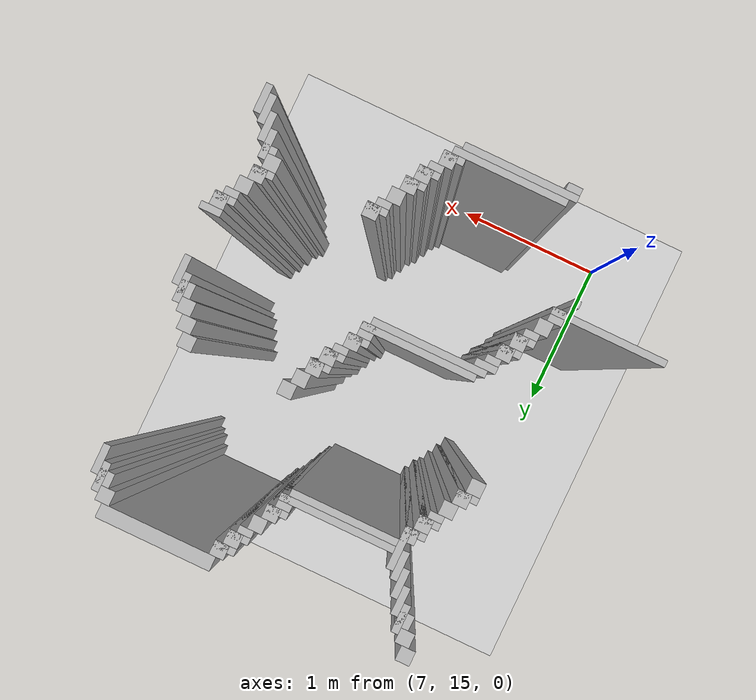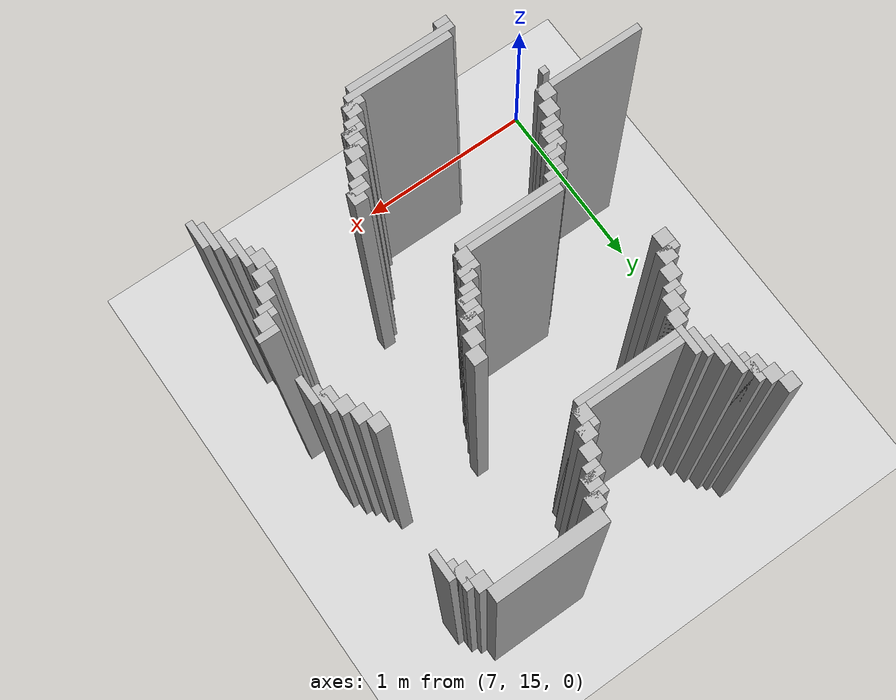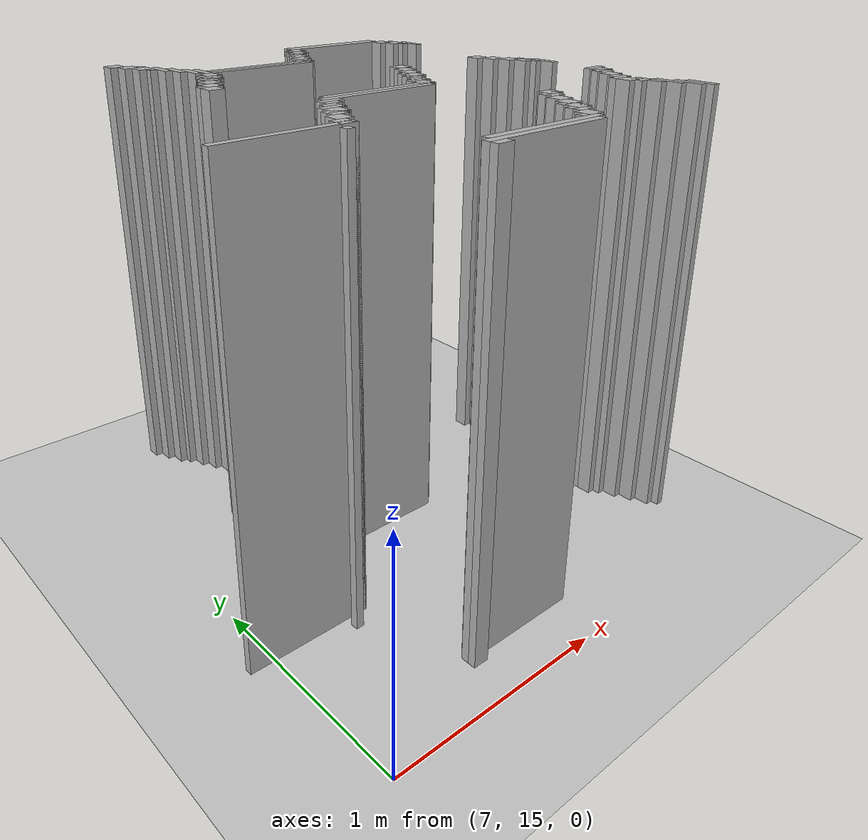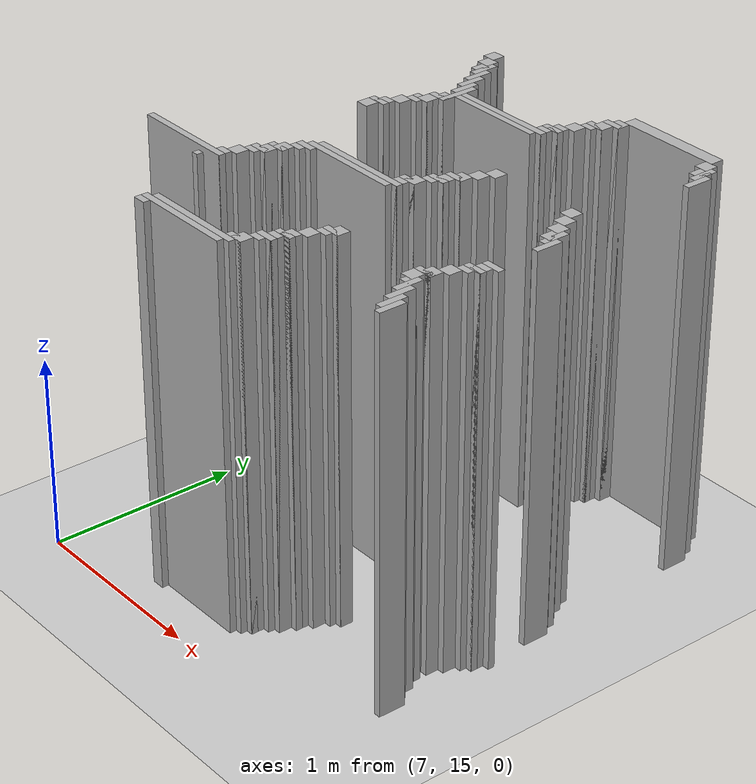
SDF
<sdf version="1.6">
 <world name="slam_world">
  <model name="ground_plane">
   <static>true</static>
   <link name="link">
    <collision name="collision">
     <geometry><plane><normal>0 0 1</normal><size>100 100</size></plane></geometry>
    </collision>
    <visual name="visual">
     <geometry><plane><normal>0 0 1</normal><size>100 100</size></plane></geometry>
     <material>
      <ambient>0.8 0.8 0.8 1</ambient>
      <diffuse>0.8 0.8 0.8 1</diffuse>
      <specular>0.8 0.8 0.8 1</specular>
     </material>
    </visual>
   </link>
  </model>
  <model name="wall_5">
   <static>true</static>
   <pose>7.378190255220417 17.366589327146173 1.0 0 0 0</pose>
   <link name="link">
    <collision name="collision">
     <geometry><box><size>0.06960556844547564 0.06960556844547564 2.0</size></box></geometry>
    </collision>
    <visual name="visual">
     <geometry><box><size>0.06960556844547564 0.06960556844547564 2.0</size></box></geometry>
     <material><ambient>0.5 0.5 0.5 1</ambient><diffuse>0.7 0.7 0.7 1</diffuse></material>
    </visual>
   </link>
  </model>
  <model name="wall_6">
   <static>true</static>
   <pose>8.596287703016241 17.366589327146173 1.0 0 0 0</pose>
   <link name="link">
    <collision name="collision">
     <geometry><box><size>0.5568445475638051 0.06960556844547564 2.0</size></box></geometry>
    </collision>
    <visual name="visual">
     <geometry><box><size>0.5568445475638051 0.06960556844547564 2.0</size></box></geometry>
     <material><ambient>0.5 0.5 0.5 1</ambient><diffuse>0.7 0.7 0.7 1</diffuse></material>
    </visual>
   </link>
  </model>
  <model name="wall_20">
   <static>true</static>
   <pose>7.412993039443156 17.296983758700694 1.0 0 0 0</pose>
   <link name="link">
    <collision name="collision">
     <geometry><box><size>0.06960556844547564 0.06960556844547564 2.0</size></box></geometry>
    </collision>
    <visual name="visual">
     <geometry><box><size>0.06960556844547564 0.06960556844547564 2.0</size></box></geometry>
     <material><ambient>0.5 0.5 0.5 1</ambient><diffuse>0.7 0.7 0.7 1</diffuse></material>
    </visual>
   </link>
  </model>
  <model name="wall_21">
   <static>true</static>
   <pose>8.317865429234338 17.296983758700694 1.0 0 0 0</pose>
   <link name="link">
    <collision name="collision">
     <geometry><box><size>0.06960556844547564 0.06960556844547564 2.0</size></box></geometry>
    </collision>
    <visual name="visual">
     <geometry><box><size>0.06960556844547564 0.06960556844547564 2.0</size></box></geometry>
     <material><ambient>0.5 0.5 0.5 1</ambient><diffuse>0.7 0.7 0.7 1</diffuse></material>
    </visual>
   </link>
  </model>
  <model name="wall_22">
   <static>true</static>
   <pose>8.874709976798144 17.296983758700694 1.0 0 0 0</pose>
   <link name="link">
    <collision name="collision">
     <geometry><box><size>0.06960556844547564 0.06960556844547564 2.0</size></box></geometry>
    </collision>
    <visual name="visual">
     <geometry><box><size>0.06960556844547564 0.06960556844547564 2.0</size></box></geometry>
     <material><ambient>0.5 0.5 0.5 1</ambient><diffuse>0.7 0.7 0.7 1</diffuse></material>
    </visual>
   </link>
  </model>
  <model name="wall_40">
   <static>true</static>
   <pose>7.465197215777262 17.22737819025522 1.0 0 0 0</pose>
   <link name="link">
    <collision name="collision">
     <geometry><box><size>0.03480278422273782 0.13921113689095127 2.0</size></box></geometry>
    </collision>
    <visual name="visual">
     <geometry><box><size>0.03480278422273782 0.13921113689095127 2.0</size></box></geometry>
     <material><ambient>0.5 0.5 0.5 1</ambient><diffuse>0.7 0.7 0.7 1</diffuse></material>
    </visual>
   </link>
  </model>
  <model name="wall_41">
   <static>true</static>
   <pose>8.30046403712297 17.279582366589327 1.0 0 0 0</pose>
   <link name="link">
    <collision name="collision">
     <geometry><box><size>0.10440835266821345 0.03480278422273782 2.0</size></box></geometry>
    </collision>
    <visual name="visual">
     <geometry><box><size>0.10440835266821345 0.03480278422273782 2.0</size></box></geometry>
     <material><ambient>0.5 0.5 0.5 1</ambient><diffuse>0.7 0.7 0.7 1</diffuse></material>
    </visual>
   </link>
  </model>
  <model name="wall_42">
   <static>true</static>
   <pose>8.92691415313225 17.22737819025522 1.0 0 0 0</pose>
   <link name="link">
    <collision name="collision">
     <geometry><box><size>0.03480278422273782 0.13921113689095127 2.0</size></box></geometry>
    </collision>
    <visual name="visual">
     <geometry><box><size>0.03480278422273782 0.13921113689095127 2.0</size></box></geometry>
     <material><ambient>0.5 0.5 0.5 1</ambient><diffuse>0.7 0.7 0.7 1</diffuse></material>
    </visual>
   </link>
  </model>
  <model name="wall_60">
   <static>true</static>
   <pose>7.447795823665893 17.22737819025522 1.0 0 0 0</pose>
   <link name="link">
    <collision name="collision">
     <geometry><box><size>0.06960556844547564 0.06960556844547564 2.0</size></box></geometry>
    </collision>
    <visual name="visual">
     <geometry><box><size>0.06960556844547564 0.06960556844547564 2.0</size></box></geometry>
     <material><ambient>0.5 0.5 0.5 1</ambient><diffuse>0.7 0.7 0.7 1</diffuse></material>
    </visual>
   </link>
  </model>
  <model name="wall_61">
   <static>true</static>
   <pose>8.2830626450116 17.22737819025522 1.0 0 0 0</pose>
   <link name="link">
    <collision name="collision">
     <geometry><box><size>0.06960556844547564 0.06960556844547564 2.0</size></box></geometry>
    </collision>
    <visual name="visual">
     <geometry><box><size>0.06960556844547564 0.06960556844547564 2.0</size></box></geometry>
     <material><ambient>0.5 0.5 0.5 1</ambient><diffuse>0.7 0.7 0.7 1</diffuse></material>
    </visual>
   </link>
  </model>
  <model name="wall_62">
   <static>true</static>
   <pose>8.909512761020881 17.22737819025522 1.0 0 0 0</pose>
   <link name="link">
    <collision name="collision">
     <geometry><box><size>0.06960556844547564 0.06960556844547564 2.0</size></box></geometry>
    </collision>
    <visual name="visual">
     <geometry><box><size>0.06960556844547564 0.06960556844547564 2.0</size></box></geometry>
     <material><ambient>0.5 0.5 0.5 1</ambient><diffuse>0.7 0.7 0.7 1</diffuse></material>
    </visual>
   </link>
  </model>
  <model name="wall_80">
   <static>true</static>
   <pose>7.5 17.157772621809745 1.0 0 0 0</pose>
   <link name="link">
    <collision name="collision">
     <geometry><box><size>0.03480278422273782 0.13921113689095127 2.0</size></box></geometry>
    </collision>
    <visual name="visual">
     <geometry><box><size>0.03480278422273782 0.13921113689095127 2.0</size></box></geometry>
     <material><ambient>0.5 0.5 0.5 1</ambient><diffuse>0.7 0.7 0.7 1</diffuse></material>
    </visual>
   </link>
  </model>
  <model name="wall_81">
   <static>true</static>
   <pose>8.265661252900232 17.209976798143853 1.0 0 0 0</pose>
   <link name="link">
    <collision name="collision">
     <geometry><box><size>0.10440835266821345 0.03480278422273782 2.0</size></box></geometry>
    </collision>
    <visual name="visual">
     <geometry><box><size>0.10440835266821345 0.03480278422273782 2.0</size></box></geometry>
     <material><ambient>0.5 0.5 0.5 1</ambient><diffuse>0.7 0.7 0.7 1</diffuse></material>
    </visual>
   </link>
  </model>
  <model name="wall_82">
   <static>true</static>
   <pose>8.961716937354987 17.157772621809745 1.0 0 0 0</pose>
   <link name="link">
    <collision name="collision">
     <geometry><box><size>0.03480278422273782 0.13921113689095127 2.0</size></box></geometry>
    </collision>
    <visual name="visual">
     <geometry><box><size>0.03480278422273782 0.13921113689095127 2.0</size></box></geometry>
     <material><ambient>0.5 0.5 0.5 1</ambient><diffuse>0.7 0.7 0.7 1</diffuse></material>
    </visual>
   </link>
  </model>
  <model name="wall_96">
   <static>true</static>
   <pose>8.248259860788863 17.17517401392111 1.0 0 0 0</pose>
   <link name="link">
    <collision name="collision">
     <geometry><box><size>0.06960556844547564 0.03480278422273782 2.0</size></box></geometry>
    </collision>
    <visual name="visual">
     <geometry><box><size>0.06960556844547564 0.03480278422273782 2.0</size></box></geometry>
     <material><ambient>0.5 0.5 0.5 1</ambient><diffuse>0.7 0.7 0.7 1</diffuse></material>
    </visual>
   </link>
  </model>
  <model name="wall_110">
   <static>true</static>
   <pose>7.534802784222737 17.08816705336427 1.0 0 0 0</pose>
   <link name="link">
    <collision name="collision">
     <geometry><box><size>0.03480278422273782 0.13921113689095127 2.0</size></box></geometry>
    </collision>
    <visual name="visual">
     <geometry><box><size>0.03480278422273782 0.13921113689095127 2.0</size></box></geometry>
     <material><ambient>0.5 0.5 0.5 1</ambient><diffuse>0.7 0.7 0.7 1</diffuse></material>
    </visual>
   </link>
  </model>
  <model name="wall_111">
   <static>true</static>
   <pose>8.213457076566124 17.122969837587007 1.0 0 0 0</pose>
   <link name="link">
    <collision name="collision">
     <geometry><box><size>0.06960556844547564 0.06960556844547564 2.0</size></box></geometry>
    </collision>
    <visual name="visual">
     <geometry><box><size>0.06960556844547564 0.06960556844547564 2.0</size></box></geometry>
     <material><ambient>0.5 0.5 0.5 1</ambient><diffuse>0.7 0.7 0.7 1</diffuse></material>
    </visual>
   </link>
  </model>
  <model name="wall_130">
   <static>true</static>
   <pose>7.569605568445476 17.01856148491879 1.0 0 0 0</pose>
   <link name="link">
    <collision name="collision">
     <geometry><box><size>0.03480278422273782 0.13921113689095127 2.0</size></box></geometry>
    </collision>
    <visual name="visual">
     <geometry><box><size>0.03480278422273782 0.13921113689095127 2.0</size></box></geometry>
     <material><ambient>0.5 0.5 0.5 1</ambient><diffuse>0.7 0.7 0.7 1</diffuse></material>
    </visual>
   </link>
  </model>
  <model name="wall_131">
   <static>true</static>
   <pose>8.178654292343387 17.053364269141532 1.0 0 0 0</pose>
   <link name="link">
    <collision name="collision">
     <geometry><box><size>0.06960556844547564 0.06960556844547564 2.0</size></box></geometry>
    </collision>
    <visual name="visual">
     <geometry><box><size>0.06960556844547564 0.06960556844547564 2.0</size></box></geometry>
     <material><ambient>0.5 0.5 0.5 1</ambient><diffuse>0.7 0.7 0.7 1</diffuse></material>
    </visual>
   </link>
  </model>
  <model name="wall_150">
   <static>true</static>
   <pose>7.604408352668213 16.948955916473317 1.0 0 0 0</pose>
   <link name="link">
    <collision name="collision">
     <geometry><box><size>0.03480278422273782 0.2088167053364269 2.0</size></box></geometry>
    </collision>
    <visual name="visual">
     <geometry><box><size>0.03480278422273782 0.2088167053364269 2.0</size></box></geometry>
     <material><ambient>0.5 0.5 0.5 1</ambient><diffuse>0.7 0.7 0.7 1</diffuse></material>
    </visual>
   </link>
  </model>
  <model name="wall_151">
   <static>true</static>
   <pose>8.161252900232018 17.035962877030162 1.0 0 0 0</pose>
   <link name="link">
    <collision name="collision">
     <geometry><box><size>0.10440835266821345 0.03480278422273782 2.0</size></box></geometry>
    </collision>
    <visual name="visual">
     <geometry><box><size>0.10440835266821345 0.03480278422273782 2.0</size></box></geometry>
     <material><ambient>0.5 0.5 0.5 1</ambient><diffuse>0.7 0.7 0.7 1</diffuse></material>
    </visual>
   </link>
  </model>
  <model name="wall_166">
   <static>true</static>
   <pose>8.14385150812065 16.983758700696054 1.0 0 0 0</pose>
   <link name="link">
    <collision name="collision">
     <geometry><box><size>0.06960556844547564 0.06960556844547564 2.0</size></box></geometry>
    </collision>
    <visual name="visual">
     <geometry><box><size>0.06960556844547564 0.06960556844547564 2.0</size></box></geometry>
     <material><ambient>0.5 0.5 0.5 1</ambient><diffuse>0.7 0.7 0.7 1</diffuse></material>
    </visual>
   </link>
  </model>
  <model name="wall_176">
   <static>true</static>
   <pose>7.900232018561485 16.966357308584687 1.0 0 0 0</pose>
   <link name="link">
    <collision name="collision">
     <geometry><box><size>0.5568445475638051 0.03480278422273782 2.0</size></box></geometry>
    </collision>
    <visual name="visual">
     <geometry><box><size>0.5568445475638051 0.03480278422273782 2.0</size></box></geometry>
     <material><ambient>0.5 0.5 0.5 1</ambient><diffuse>0.7 0.7 0.7 1</diffuse></material>
    </visual>
   </link>
  </model>
  <model name="wall_187">
   <static>true</static>
   <pose>7.882830626450116 16.93155452436195 1.0 0 0 0</pose>
   <link name="link">
    <collision name="collision">
     <geometry><box><size>0.5220417633410672 0.03480278422273782 2.0</size></box></geometry>
    </collision>
    <visual name="visual">
     <geometry><box><size>0.5220417633410672 0.03480278422273782 2.0</size></box></geometry>
     <material><ambient>0.5 0.5 0.5 1</ambient><diffuse>0.7 0.7 0.7 1</diffuse></material>
    </visual>
   </link>
  </model>
  <model name="wall_195">
   <static>true</static>
   <pose>7.587006960556844 16.87935034802784 1.0 0 0 0</pose>
   <link name="link">
    <collision name="collision">
     <geometry><box><size>0.06960556844547564 0.06960556844547564 2.0</size></box></geometry>
    </collision>
    <visual name="visual">
     <geometry><box><size>0.06960556844547564 0.06960556844547564 2.0</size></box></geometry>
     <material><ambient>0.5 0.5 0.5 1</ambient><diffuse>0.7 0.7 0.7 1</diffuse></material>
    </visual>
   </link>
  </model>
  <model name="wall_203">
   <static>true</static>
   <pose>7.569605568445476 16.86194895591647 1.0 0 0 0</pose>
   <link name="link">
    <collision name="collision">
     <geometry><box><size>0.10440835266821345 0.03480278422273782 2.0</size></box></geometry>
    </collision>
    <visual name="visual">
     <geometry><box><size>0.10440835266821345 0.03480278422273782 2.0</size></box></geometry>
     <material><ambient>0.5 0.5 0.5 1</ambient><diffuse>0.7 0.7 0.7 1</diffuse></material>
    </visual>
   </link>
  </model>
  <model name="wall_211">
   <static>true</static>
   <pose>7.552204176334106 16.809744779582367 1.0 0 0 0</pose>
   <link name="link">
    <collision name="collision">
     <geometry><box><size>0.06960556844547564 0.06960556844547564 2.0</size></box></geometry>
    </collision>
    <visual name="visual">
     <geometry><box><size>0.06960556844547564 0.06960556844547564 2.0</size></box></geometry>
     <material><ambient>0.5 0.5 0.5 1</ambient><diffuse>0.7 0.7 0.7 1</diffuse></material>
    </visual>
   </link>
  </model>
  <model name="wall_219">
   <static>true</static>
   <pose>7.534802784222737 16.792343387470996 1.0 0 0 0</pose>
   <link name="link">
    <collision name="collision">
     <geometry><box><size>0.10440835266821345 0.03480278422273782 2.0</size></box></geometry>
    </collision>
    <visual name="visual">
     <geometry><box><size>0.10440835266821345 0.03480278422273782 2.0</size></box></geometry>
     <material><ambient>0.5 0.5 0.5 1</ambient><diffuse>0.7 0.7 0.7 1</diffuse></material>
    </visual>
   </link>
  </model>
  <model name="wall_225">
   <static>true</static>
   <pose>7.517401392111369 16.75754060324826 1.0 0 0 0</pose>
   <link name="link">
    <collision name="collision">
     <geometry><box><size>0.06960556844547564 0.03480278422273782 2.0</size></box></geometry>
    </collision>
    <visual name="visual">
     <geometry><box><size>0.06960556844547564 0.03480278422273782 2.0</size></box></geometry>
     <material><ambient>0.5 0.5 0.5 1</ambient><diffuse>0.7 0.7 0.7 1</diffuse></material>
    </visual>
   </link>
  </model>
  <model name="wall_231">
   <static>true</static>
   <pose>7.48259860788863 16.70533642691415 1.0 0 0 0</pose>
   <link name="link">
    <collision name="collision">
     <geometry><box><size>0.06960556844547564 0.06960556844547564 2.0</size></box></geometry>
    </collision>
    <visual name="visual">
     <geometry><box><size>0.06960556844547564 0.06960556844547564 2.0</size></box></geometry>
     <material><ambient>0.5 0.5 0.5 1</ambient><diffuse>0.7 0.7 0.7 1</diffuse></material>
    </visual>
   </link>
  </model>
  <model name="wall_239">
   <static>true</static>
   <pose>7.447795823665893 16.635730858468676 1.0 0 0 0</pose>
   <link name="link">
    <collision name="collision">
     <geometry><box><size>0.06960556844547564 0.06960556844547564 2.0</size></box></geometry>
    </collision>
    <visual name="visual">
     <geometry><box><size>0.06960556844547564 0.06960556844547564 2.0</size></box></geometry>
     <material><ambient>0.5 0.5 0.5 1</ambient><diffuse>0.7 0.7 0.7 1</diffuse></material>
    </visual>
   </link>
  </model>
  <model name="wall_247">
   <static>true</static>
   <pose>7.430394431554524 16.61832946635731 1.0 0 0 0</pose>
   <link name="link">
    <collision name="collision">
     <geometry><box><size>0.10440835266821345 0.03480278422273782 2.0</size></box></geometry>
    </collision>
    <visual name="visual">
     <geometry><box><size>0.10440835266821345 0.03480278422273782 2.0</size></box></geometry>
     <material><ambient>0.5 0.5 0.5 1</ambient><diffuse>0.7 0.7 0.7 1</diffuse></material>
    </visual>
   </link>
  </model>
  <model name="wall_253">
   <static>true</static>
   <pose>7.412993039443156 16.5661252900232 1.0 0 0 0</pose>
   <link name="link">
    <collision name="collision">
     <geometry><box><size>0.06960556844547564 0.06960556844547564 2.0</size></box></geometry>
    </collision>
    <visual name="visual">
     <geometry><box><size>0.06960556844547564 0.06960556844547564 2.0</size></box></geometry>
     <material><ambient>0.5 0.5 0.5 1</ambient><diffuse>0.7 0.7 0.7 1</diffuse></material>
    </visual>
   </link>
  </model>
  <model name="wall_264">
   <static>true</static>
   <pose>8.352668213457076 16.531322505800464 1.0 0 0 0</pose>
   <link name="link">
    <collision name="collision">
     <geometry><box><size>0.06960556844547564 0.06960556844547564 2.0</size></box></geometry>
    </collision>
    <visual name="visual">
     <geometry><box><size>0.06960556844547564 0.06960556844547564 2.0</size></box></geometry>
     <material><ambient>0.5 0.5 0.5 1</ambient><diffuse>0.7 0.7 0.7 1</diffuse></material>
    </visual>
   </link>
  </model>
  <model name="wall_265">
   <static>true</static>
   <pose>8.839907192575406 16.531322505800464 1.0 0 0 0</pose>
   <link name="link">
    <collision name="collision">
     <geometry><box><size>0.06960556844547564 0.06960556844547564 2.0</size></box></geometry>
    </collision>
    <visual name="visual">
     <geometry><box><size>0.06960556844547564 0.06960556844547564 2.0</size></box></geometry>
     <material><ambient>0.5 0.5 0.5 1</ambient><diffuse>0.7 0.7 0.7 1</diffuse></material>
    </visual>
   </link>
  </model>
  <model name="wall_285">
   <static>true</static>
   <pose>8.317865429234338 16.46171693735499 1.0 0 0 0</pose>
   <link name="link">
    <collision name="collision">
     <geometry><box><size>0.06960556844547564 0.06960556844547564 2.0</size></box></geometry>
    </collision>
    <visual name="visual">
     <geometry><box><size>0.06960556844547564 0.06960556844547564 2.0</size></box></geometry>
     <material><ambient>0.5 0.5 0.5 1</ambient><diffuse>0.7 0.7 0.7 1</diffuse></material>
    </visual>
   </link>
  </model>
  <model name="wall_286">
   <static>true</static>
   <pose>8.874709976798144 16.46171693735499 1.0 0 0 0</pose>
   <link name="link">
    <collision name="collision">
     <geometry><box><size>0.06960556844547564 0.06960556844547564 2.0</size></box></geometry>
    </collision>
    <visual name="visual">
     <geometry><box><size>0.06960556844547564 0.06960556844547564 2.0</size></box></geometry>
     <material><ambient>0.5 0.5 0.5 1</ambient><diffuse>0.7 0.7 0.7 1</diffuse></material>
    </visual>
   </link>
  </model>
  <model name="wall_308">
   <static>true</static>
   <pose>8.2830626450116 16.39211136890951 1.0 0 0 0</pose>
   <link name="link">
    <collision name="collision">
     <geometry><box><size>0.06960556844547564 0.06960556844547564 2.0</size></box></geometry>
    </collision>
    <visual name="visual">
     <geometry><box><size>0.06960556844547564 0.06960556844547564 2.0</size></box></geometry>
     <material><ambient>0.5 0.5 0.5 1</ambient><diffuse>0.7 0.7 0.7 1</diffuse></material>
    </visual>
   </link>
  </model>
  <model name="wall_309">
   <static>true</static>
   <pose>8.909512761020881 16.39211136890951 1.0 0 0 0</pose>
   <link name="link">
    <collision name="collision">
     <geometry><box><size>0.06960556844547564 0.06960556844547564 2.0</size></box></geometry>
    </collision>
    <visual name="visual">
     <geometry><box><size>0.06960556844547564 0.06960556844547564 2.0</size></box></geometry>
     <material><ambient>0.5 0.5 0.5 1</ambient><diffuse>0.7 0.7 0.7 1</diffuse></material>
    </visual>
   </link>
  </model>
  <model name="wall_325">
   <static>true</static>
   <pose>8.265661252900232 16.374709976798144 1.0 0 0 0</pose>
   <link name="link">
    <collision name="collision">
     <geometry><box><size>0.10440835266821345 0.03480278422273782 2.0</size></box></geometry>
    </collision>
    <visual name="visual">
     <geometry><box><size>0.10440835266821345 0.03480278422273782 2.0</size></box></geometry>
     <material><ambient>0.5 0.5 0.5 1</ambient><diffuse>0.7 0.7 0.7 1</diffuse></material>
    </visual>
   </link>
  </model>
  <model name="wall_326">
   <static>true</static>
   <pose>8.961716937354987 16.322505800464036 1.0 0 0 0</pose>
   <link name="link">
    <collision name="collision">
     <geometry><box><size>0.03480278422273782 0.13921113689095127 2.0</size></box></geometry>
    </collision>
    <visual name="visual">
     <geometry><box><size>0.03480278422273782 0.13921113689095127 2.0</size></box></geometry>
     <material><ambient>0.5 0.5 0.5 1</ambient><diffuse>0.7 0.7 0.7 1</diffuse></material>
    </visual>
   </link>
  </model>
  <model name="wall_342">
   <static>true</static>
   <pose>8.248259860788863 16.322505800464036 1.0 0 0 0</pose>
   <link name="link">
    <collision name="collision">
     <geometry><box><size>0.06960556844547564 0.06960556844547564 2.0</size></box></geometry>
    </collision>
    <visual name="visual">
     <geometry><box><size>0.06960556844547564 0.06960556844547564 2.0</size></box></geometry>
     <material><ambient>0.5 0.5 0.5 1</ambient><diffuse>0.7 0.7 0.7 1</diffuse></material>
    </visual>
   </link>
  </model>
  <model name="wall_343">
   <static>true</static>
   <pose>8.944315545243619 16.322505800464036 1.0 0 0 0</pose>
   <link name="link">
    <collision name="collision">
     <geometry><box><size>0.06960556844547564 0.06960556844547564 2.0</size></box></geometry>
    </collision>
    <visual name="visual">
     <geometry><box><size>0.06960556844547564 0.06960556844547564 2.0</size></box></geometry>
     <material><ambient>0.5 0.5 0.5 1</ambient><diffuse>0.7 0.7 0.7 1</diffuse></material>
    </visual>
   </link>
  </model>
  <model name="wall_359">
   <static>true</static>
   <pose>8.230858468677495 16.30510440835267 1.0 0 0 0</pose>
   <link name="link">
    <collision name="collision">
     <geometry><box><size>0.10440835266821345 0.03480278422273782 2.0</size></box></geometry>
    </collision>
    <visual name="visual">
     <geometry><box><size>0.10440835266821345 0.03480278422273782 2.0</size></box></geometry>
     <material><ambient>0.5 0.5 0.5 1</ambient><diffuse>0.7 0.7 0.7 1</diffuse></material>
    </visual>
   </link>
  </model>
  <model name="wall_360">
   <static>true</static>
   <pose>8.996519721577727 16.25290023201856 1.0 0 0 0</pose>
   <link name="link">
    <collision name="collision">
     <geometry><box><size>0.03480278422273782 0.13921113689095127 2.0</size></box></geometry>
    </collision>
    <visual name="visual">
     <geometry><box><size>0.03480278422273782 0.13921113689095127 2.0</size></box></geometry>
     <material><ambient>0.5 0.5 0.5 1</ambient><diffuse>0.7 0.7 0.7 1</diffuse></material>
    </visual>
   </link>
  </model>
  <model name="wall_371">
   <static>true</static>
   <pose>8.213457076566124 16.270301624129928 1.0 0 0 0</pose>
   <link name="link">
    <collision name="collision">
     <geometry><box><size>0.06960556844547564 0.03480278422273782 2.0</size></box></geometry>
    </collision>
    <visual name="visual">
     <geometry><box><size>0.06960556844547564 0.03480278422273782 2.0</size></box></geometry>
     <material><ambient>0.5 0.5 0.5 1</ambient><diffuse>0.7 0.7 0.7 1</diffuse></material>
    </visual>
   </link>
  </model>
  <model name="wall_384">
   <static>true</static>
   <pose>8.178654292343387 16.218097447795824 1.0 0 0 0</pose>
   <link name="link">
    <collision name="collision">
     <geometry><box><size>0.06960556844547564 0.06960556844547564 2.0</size></box></geometry>
    </collision>
    <visual name="visual">
     <geometry><box><size>0.06960556844547564 0.06960556844547564 2.0</size></box></geometry>
     <material><ambient>0.5 0.5 0.5 1</ambient><diffuse>0.7 0.7 0.7 1</diffuse></material>
    </visual>
   </link>
  </model>
  <model name="wall_396">
   <static>true</static>
   <pose>8.161252900232018 16.200696055684453 1.0 0 0 0</pose>
   <link name="link">
    <collision name="collision">
     <geometry><box><size>0.10440835266821345 0.03480278422273782 2.0</size></box></geometry>
    </collision>
    <visual name="visual">
     <geometry><box><size>0.10440835266821345 0.03480278422273782 2.0</size></box></geometry>
     <material><ambient>0.5 0.5 0.5 1</ambient><diffuse>0.7 0.7 0.7 1</diffuse></material>
    </visual>
   </link>
  </model>
  <model name="wall_409">
   <static>true</static>
   <pose>8.14385150812065 16.14849187935035 1.0 0 0 0</pose>
   <link name="link">
    <collision name="collision">
     <geometry><box><size>0.06960556844547564 0.06960556844547564 2.0</size></box></geometry>
    </collision>
    <visual name="visual">
     <geometry><box><size>0.06960556844547564 0.06960556844547564 2.0</size></box></geometry>
     <material><ambient>0.5 0.5 0.5 1</ambient><diffuse>0.7 0.7 0.7 1</diffuse></material>
    </visual>
   </link>
  </model>
  <model name="wall_425">
   <static>true</static>
   <pose>7.900232018561485 16.13109048723898 1.0 0 0 0</pose>
   <link name="link">
    <collision name="collision">
     <geometry><box><size>0.5568445475638051 0.03480278422273782 2.0</size></box></geometry>
    </collision>
    <visual name="visual">
     <geometry><box><size>0.5568445475638051 0.03480278422273782 2.0</size></box></geometry>
     <material><ambient>0.5 0.5 0.5 1</ambient><diffuse>0.7 0.7 0.7 1</diffuse></material>
    </visual>
   </link>
  </model>
  <model name="wall_436">
   <static>true</static>
   <pose>7.865429234338746 16.09628770301624 1.0 0 0 0</pose>
   <link name="link">
    <collision name="collision">
     <geometry><box><size>0.5568445475638051 0.03480278422273782 2.0</size></box></geometry>
    </collision>
    <visual name="visual">
     <geometry><box><size>0.5568445475638051 0.03480278422273782 2.0</size></box></geometry>
     <material><ambient>0.5 0.5 0.5 1</ambient><diffuse>0.7 0.7 0.7 1</diffuse></material>
    </visual>
   </link>
  </model>
  <model name="wall_449">
   <static>true</static>
   <pose>7.604408352668213 16.061484918793504 1.0 0 0 0</pose>
   <link name="link">
    <collision name="collision">
     <geometry><box><size>0.10440835266821345 0.03480278422273782 2.0</size></box></geometry>
    </collision>
    <visual name="visual">
     <geometry><box><size>0.10440835266821345 0.03480278422273782 2.0</size></box></geometry>
     <material><ambient>0.5 0.5 0.5 1</ambient><diffuse>0.7 0.7 0.7 1</diffuse></material>
    </visual>
   </link>
  </model>
  <model name="wall_462">
   <static>true</static>
   <pose>7.587006960556844 16.026682134570766 1.0 0 0 0</pose>
   <link name="link">
    <collision name="collision">
     <geometry><box><size>0.06960556844547564 0.03480278422273782 2.0</size></box></geometry>
    </collision>
    <visual name="visual">
     <geometry><box><size>0.06960556844547564 0.03480278422273782 2.0</size></box></geometry>
     <material><ambient>0.5 0.5 0.5 1</ambient><diffuse>0.7 0.7 0.7 1</diffuse></material>
    </visual>
   </link>
  </model>
  <model name="wall_475">
   <static>true</static>
   <pose>7.552204176334106 15.974477958236658 1.0 0 0 0</pose>
   <link name="link">
    <collision name="collision">
     <geometry><box><size>0.06960556844547564 0.06960556844547564 2.0</size></box></geometry>
    </collision>
    <visual name="visual">
     <geometry><box><size>0.06960556844547564 0.06960556844547564 2.0</size></box></geometry>
     <material><ambient>0.5 0.5 0.5 1</ambient><diffuse>0.7 0.7 0.7 1</diffuse></material>
    </visual>
   </link>
  </model>
  <model name="wall_488">
   <static>true</static>
   <pose>7.534802784222737 15.95707656612529 1.0 0 0 0</pose>
   <link name="link">
    <collision name="collision">
     <geometry><box><size>0.10440835266821345 0.03480278422273782 2.0</size></box></geometry>
    </collision>
    <visual name="visual">
     <geometry><box><size>0.10440835266821345 0.03480278422273782 2.0</size></box></geometry>
     <material><ambient>0.5 0.5 0.5 1</ambient><diffuse>0.7 0.7 0.7 1</diffuse></material>
    </visual>
   </link>
  </model>
  <model name="wall_489">
   <static>true</static>
   <pose>8.996519721577727 15.95707656612529 1.0 0 0 0</pose>
   <link name="link">
    <collision name="collision">
     <geometry><box><size>0.10440835266821345 0.03480278422273782 2.0</size></box></geometry>
    </collision>
    <visual name="visual">
     <geometry><box><size>0.10440835266821345 0.03480278422273782 2.0</size></box></geometry>
     <material><ambient>0.5 0.5 0.5 1</ambient><diffuse>0.7 0.7 0.7 1</diffuse></material>
    </visual>
   </link>
  </model>
  <model name="wall_497">
   <static>true</static>
   <pose>7.517401392111369 15.904872389791183 1.0 0 0 0</pose>
   <link name="link">
    <collision name="collision">
     <geometry><box><size>0.06960556844547564 0.06960556844547564 2.0</size></box></geometry>
    </collision>
    <visual name="visual">
     <geometry><box><size>0.06960556844547564 0.06960556844547564 2.0</size></box></geometry>
     <material><ambient>0.5 0.5 0.5 1</ambient><diffuse>0.7 0.7 0.7 1</diffuse></material>
    </visual>
   </link>
  </model>
  <model name="wall_498">
   <static>true</static>
   <pose>8.979118329466356 15.904872389791183 1.0 0 0 0</pose>
   <link name="link">
    <collision name="collision">
     <geometry><box><size>0.06960556844547564 0.06960556844547564 2.0</size></box></geometry>
    </collision>
    <visual name="visual">
     <geometry><box><size>0.06960556844547564 0.06960556844547564 2.0</size></box></geometry>
     <material><ambient>0.5 0.5 0.5 1</ambient><diffuse>0.7 0.7 0.7 1</diffuse></material>
    </visual>
   </link>
  </model>
  <model name="wall_510">
   <static>true</static>
   <pose>7.5 15.887470997679813 1.0 0 0 0</pose>
   <link name="link">
    <collision name="collision">
     <geometry><box><size>0.10440835266821345 0.03480278422273782 2.0</size></box></geometry>
    </collision>
    <visual name="visual">
     <geometry><box><size>0.10440835266821345 0.03480278422273782 2.0</size></box></geometry>
     <material><ambient>0.5 0.5 0.5 1</ambient><diffuse>0.7 0.7 0.7 1</diffuse></material>
    </visual>
   </link>
  </model>
  <model name="wall_511">
   <static>true</static>
   <pose>8.961716937354987 15.887470997679813 1.0 0 0 0</pose>
   <link name="link">
    <collision name="collision">
     <geometry><box><size>0.10440835266821345 0.03480278422273782 2.0</size></box></geometry>
    </collision>
    <visual name="visual">
     <geometry><box><size>0.10440835266821345 0.03480278422273782 2.0</size></box></geometry>
     <material><ambient>0.5 0.5 0.5 1</ambient><diffuse>0.7 0.7 0.7 1</diffuse></material>
    </visual>
   </link>
  </model>
  <model name="wall_519">
   <static>true</static>
   <pose>7.48259860788863 15.852668213457076 1.0 0 0 0</pose>
   <link name="link">
    <collision name="collision">
     <geometry><box><size>0.06960556844547564 0.03480278422273782 2.0</size></box></geometry>
    </collision>
    <visual name="visual">
     <geometry><box><size>0.06960556844547564 0.03480278422273782 2.0</size></box></geometry>
     <material><ambient>0.5 0.5 0.5 1</ambient><diffuse>0.7 0.7 0.7 1</diffuse></material>
    </visual>
   </link>
  </model>
  <model name="wall_520">
   <static>true</static>
   <pose>8.944315545243619 15.852668213457076 1.0 0 0 0</pose>
   <link name="link">
    <collision name="collision">
     <geometry><box><size>0.06960556844547564 0.03480278422273782 2.0</size></box></geometry>
    </collision>
    <visual name="visual">
     <geometry><box><size>0.06960556844547564 0.03480278422273782 2.0</size></box></geometry>
     <material><ambient>0.5 0.5 0.5 1</ambient><diffuse>0.7 0.7 0.7 1</diffuse></material>
    </visual>
   </link>
  </model>
  <model name="wall_530">
   <static>true</static>
   <pose>7.447795823665893 15.80046403712297 1.0 0 0 0</pose>
   <link name="link">
    <collision name="collision">
     <geometry><box><size>0.06960556844547564 0.06960556844547564 2.0</size></box></geometry>
    </collision>
    <visual name="visual">
     <geometry><box><size>0.06960556844547564 0.06960556844547564 2.0</size></box></geometry>
     <material><ambient>0.5 0.5 0.5 1</ambient><diffuse>0.7 0.7 0.7 1</diffuse></material>
    </visual>
   </link>
  </model>
  <model name="wall_531">
   <static>true</static>
   <pose>8.909512761020881 15.80046403712297 1.0 0 0 0</pose>
   <link name="link">
    <collision name="collision">
     <geometry><box><size>0.06960556844547564 0.06960556844547564 2.0</size></box></geometry>
    </collision>
    <visual name="visual">
     <geometry><box><size>0.06960556844547564 0.06960556844547564 2.0</size></box></geometry>
     <material><ambient>0.5 0.5 0.5 1</ambient><diffuse>0.7 0.7 0.7 1</diffuse></material>
    </visual>
   </link>
  </model>
  <model name="wall_543">
   <static>true</static>
   <pose>7.412993039443156 15.730858468677493 1.0 0 0 0</pose>
   <link name="link">
    <collision name="collision">
     <geometry><box><size>0.06960556844547564 0.06960556844547564 2.0</size></box></geometry>
    </collision>
    <visual name="visual">
     <geometry><box><size>0.06960556844547564 0.06960556844547564 2.0</size></box></geometry>
     <material><ambient>0.5 0.5 0.5 1</ambient><diffuse>0.7 0.7 0.7 1</diffuse></material>
    </visual>
   </link>
  </model>
  <model name="wall_544">
   <static>true</static>
   <pose>8.874709976798144 15.730858468677493 1.0 0 0 0</pose>
   <link name="link">
    <collision name="collision">
     <geometry><box><size>0.06960556844547564 0.06960556844547564 2.0</size></box></geometry>
    </collision>
    <visual name="visual">
     <geometry><box><size>0.06960556844547564 0.06960556844547564 2.0</size></box></geometry>
     <material><ambient>0.5 0.5 0.5 1</ambient><diffuse>0.7 0.7 0.7 1</diffuse></material>
    </visual>
   </link>
  </model>
  <model name="wall_555">
   <static>true</static>
   <pose>7.16937354988399 15.713457076566124 1.0 0 0 0</pose>
   <link name="link">
    <collision name="collision">
     <geometry><box><size>0.5568445475638051 0.03480278422273782 2.0</size></box></geometry>
    </collision>
    <visual name="visual">
     <geometry><box><size>0.5568445475638051 0.03480278422273782 2.0</size></box></geometry>
     <material><ambient>0.5 0.5 0.5 1</ambient><diffuse>0.7 0.7 0.7 1</diffuse></material>
    </visual>
   </link>
  </model>
  <model name="wall_556">
   <static>true</static>
   <pose>8.857308584686775 15.713457076566124 1.0 0 0 0</pose>
   <link name="link">
    <collision name="collision">
     <geometry><box><size>0.10440835266821345 0.03480278422273782 2.0</size></box></geometry>
    </collision>
    <visual name="visual">
     <geometry><box><size>0.10440835266821345 0.03480278422273782 2.0</size></box></geometry>
     <material><ambient>0.5 0.5 0.5 1</ambient><diffuse>0.7 0.7 0.7 1</diffuse></material>
    </visual>
   </link>
  </model>
  <model name="wall_568">
   <static>true</static>
   <pose>8.352668213457076 15.661252900232018 1.0 0 0 0</pose>
   <link name="link">
    <collision name="collision">
     <geometry><box><size>0.06960556844547564 0.06960556844547564 2.0</size></box></geometry>
    </collision>
    <visual name="visual">
     <geometry><box><size>0.06960556844547564 0.06960556844547564 2.0</size></box></geometry>
     <material><ambient>0.5 0.5 0.5 1</ambient><diffuse>0.7 0.7 0.7 1</diffuse></material>
    </visual>
   </link>
  </model>
  <model name="wall_569">
   <static>true</static>
   <pose>8.839907192575406 15.661252900232018 1.0 0 0 0</pose>
   <link name="link">
    <collision name="collision">
     <geometry><box><size>0.06960556844547564 0.06960556844547564 2.0</size></box></geometry>
    </collision>
    <visual name="visual">
     <geometry><box><size>0.06960556844547564 0.06960556844547564 2.0</size></box></geometry>
     <material><ambient>0.5 0.5 0.5 1</ambient><diffuse>0.7 0.7 0.7 1</diffuse></material>
    </visual>
   </link>
  </model>
  <model name="wall_582">
   <static>true</static>
   <pose>7.360788863109049 15.64385150812065 1.0 0 0 0</pose>
   <link name="link">
    <collision name="collision">
     <geometry><box><size>0.03480278422273782 0.03480278422273782 2.0</size></box></geometry>
    </collision>
    <visual name="visual">
     <geometry><box><size>0.03480278422273782 0.03480278422273782 2.0</size></box></geometry>
     <material><ambient>0.5 0.5 0.5 1</ambient><diffuse>0.7 0.7 0.7 1</diffuse></material>
    </visual>
   </link>
  </model>
  <model name="wall_583">
   <static>true</static>
   <pose>8.335266821345707 15.64385150812065 1.0 0 0 0</pose>
   <link name="link">
    <collision name="collision">
     <geometry><box><size>0.10440835266821345 0.03480278422273782 2.0</size></box></geometry>
    </collision>
    <visual name="visual">
     <geometry><box><size>0.10440835266821345 0.03480278422273782 2.0</size></box></geometry>
     <material><ambient>0.5 0.5 0.5 1</ambient><diffuse>0.7 0.7 0.7 1</diffuse></material>
    </visual>
   </link>
  </model>
  <model name="wall_584">
   <static>true</static>
   <pose>8.892111368909513 15.591647331786543 1.0 0 0 0</pose>
   <link name="link">
    <collision name="collision">
     <geometry><box><size>0.03480278422273782 0.13921113689095127 2.0</size></box></geometry>
    </collision>
    <visual name="visual">
     <geometry><box><size>0.03480278422273782 0.13921113689095127 2.0</size></box></geometry>
     <material><ambient>0.5 0.5 0.5 1</ambient><diffuse>0.7 0.7 0.7 1</diffuse></material>
    </visual>
   </link>
  </model>
  <model name="wall_600">
   <static>true</static>
   <pose>8.317865429234338 15.609048723897912 1.0 0 0 0</pose>
   <link name="link">
    <collision name="collision">
     <geometry><box><size>0.06960556844547564 0.03480278422273782 2.0</size></box></geometry>
    </collision>
    <visual name="visual">
     <geometry><box><size>0.06960556844547564 0.03480278422273782 2.0</size></box></geometry>
     <material><ambient>0.5 0.5 0.5 1</ambient><diffuse>0.7 0.7 0.7 1</diffuse></material>
    </visual>
   </link>
  </model>
  <model name="wall_601">
   <static>true</static>
   <pose>8.874709976798144 15.609048723897912 1.0 0 0 0</pose>
   <link name="link">
    <collision name="collision">
     <geometry><box><size>0.06960556844547564 0.03480278422273782 2.0</size></box></geometry>
    </collision>
    <visual name="visual">
     <geometry><box><size>0.06960556844547564 0.03480278422273782 2.0</size></box></geometry>
     <material><ambient>0.5 0.5 0.5 1</ambient><diffuse>0.7 0.7 0.7 1</diffuse></material>
    </visual>
   </link>
  </model>
  <model name="wall_616">
   <static>true</static>
   <pose>8.2830626450116 15.556844547563804 1.0 0 0 0</pose>
   <link name="link">
    <collision name="collision">
     <geometry><box><size>0.06960556844547564 0.06960556844547564 2.0</size></box></geometry>
    </collision>
    <visual name="visual">
     <geometry><box><size>0.06960556844547564 0.06960556844547564 2.0</size></box></geometry>
     <material><ambient>0.5 0.5 0.5 1</ambient><diffuse>0.7 0.7 0.7 1</diffuse></material>
    </visual>
   </link>
  </model>
  <model name="wall_617">
   <static>true</static>
   <pose>8.92691415313225 15.522041763341067 1.0 0 0 0</pose>
   <link name="link">
    <collision name="collision">
     <geometry><box><size>0.03480278422273782 0.13921113689095127 2.0</size></box></geometry>
    </collision>
    <visual name="visual">
     <geometry><box><size>0.03480278422273782 0.13921113689095127 2.0</size></box></geometry>
     <material><ambient>0.5 0.5 0.5 1</ambient><diffuse>0.7 0.7 0.7 1</diffuse></material>
    </visual>
   </link>
  </model>
  <model name="wall_632">
   <static>true</static>
   <pose>8.248259860788863 15.48723897911833 1.0 0 0 0</pose>
   <link name="link">
    <collision name="collision">
     <geometry><box><size>0.06960556844547564 0.06960556844547564 2.0</size></box></geometry>
    </collision>
    <visual name="visual">
     <geometry><box><size>0.06960556844547564 0.06960556844547564 2.0</size></box></geometry>
     <material><ambient>0.5 0.5 0.5 1</ambient><diffuse>0.7 0.7 0.7 1</diffuse></material>
    </visual>
   </link>
  </model>
  <model name="wall_633">
   <static>true</static>
   <pose>8.961716937354987 15.452436194895592 1.0 0 0 0</pose>
   <link name="link">
    <collision name="collision">
     <geometry><box><size>0.03480278422273782 0.13921113689095127 2.0</size></box></geometry>
    </collision>
    <visual name="visual">
     <geometry><box><size>0.03480278422273782 0.13921113689095127 2.0</size></box></geometry>
     <material><ambient>0.5 0.5 0.5 1</ambient><diffuse>0.7 0.7 0.7 1</diffuse></material>
    </visual>
   </link>
  </model>
  <model name="wall_648">
   <static>true</static>
   <pose>8.230858468677495 15.46983758700696 1.0 0 0 0</pose>
   <link name="link">
    <collision name="collision">
     <geometry><box><size>0.10440835266821345 0.03480278422273782 2.0</size></box></geometry>
    </collision>
    <visual name="visual">
     <geometry><box><size>0.10440835266821345 0.03480278422273782 2.0</size></box></geometry>
     <material><ambient>0.5 0.5 0.5 1</ambient><diffuse>0.7 0.7 0.7 1</diffuse></material>
    </visual>
   </link>
  </model>
  <model name="wall_649">
   <static>true</static>
   <pose>8.996519721577727 15.417633410672853 1.0 0 0 0</pose>
   <link name="link">
    <collision name="collision">
     <geometry><box><size>0.03480278422273782 0.13921113689095127 2.0</size></box></geometry>
    </collision>
    <visual name="visual">
     <geometry><box><size>0.03480278422273782 0.13921113689095127 2.0</size></box></geometry>
     <material><ambient>0.5 0.5 0.5 1</ambient><diffuse>0.7 0.7 0.7 1</diffuse></material>
    </visual>
   </link>
  </model>
  <model name="wall_661">
   <static>true</static>
   <pose>8.213457076566124 15.417633410672853 1.0 0 0 0</pose>
   <link name="link">
    <collision name="collision">
     <geometry><box><size>0.06960556844547564 0.06960556844547564 2.0</size></box></geometry>
    </collision>
    <visual name="visual">
     <geometry><box><size>0.06960556844547564 0.06960556844547564 2.0</size></box></geometry>
     <material><ambient>0.5 0.5 0.5 1</ambient><diffuse>0.7 0.7 0.7 1</diffuse></material>
    </visual>
   </link>
  </model>
  <model name="wall_674">
   <static>true</static>
   <pose>8.196055684454755 15.400232018561484 1.0 0 0 0</pose>
   <link name="link">
    <collision name="collision">
     <geometry><box><size>0.10440835266821345 0.03480278422273782 2.0</size></box></geometry>
    </collision>
    <visual name="visual">
     <geometry><box><size>0.10440835266821345 0.03480278422273782 2.0</size></box></geometry>
     <material><ambient>0.5 0.5 0.5 1</ambient><diffuse>0.7 0.7 0.7 1</diffuse></material>
    </visual>
   </link>
  </model>
  <model name="wall_685">
   <static>true</static>
   <pose>8.178654292343387 15.365429234338746 1.0 0 0 0</pose>
   <link name="link">
    <collision name="collision">
     <geometry><box><size>0.06960556844547564 0.03480278422273782 2.0</size></box></geometry>
    </collision>
    <visual name="visual">
     <geometry><box><size>0.06960556844547564 0.03480278422273782 2.0</size></box></geometry>
     <material><ambient>0.5 0.5 0.5 1</ambient><diffuse>0.7 0.7 0.7 1</diffuse></material>
    </visual>
   </link>
  </model>
  <model name="wall_696">
   <static>true</static>
   <pose>8.14385150812065 15.31322505800464 1.0 0 0 0</pose>
   <link name="link">
    <collision name="collision">
     <geometry><box><size>0.06960556844547564 0.06960556844547564 2.0</size></box></geometry>
    </collision>
    <visual name="visual">
     <geometry><box><size>0.06960556844547564 0.06960556844547564 2.0</size></box></geometry>
     <material><ambient>0.5 0.5 0.5 1</ambient><diffuse>0.7 0.7 0.7 1</diffuse></material>
    </visual>
   </link>
  </model>
  <model name="wall_712">
   <static>true</static>
   <pose>8.12645011600928 15.295823665893272 1.0 0 0 0</pose>
   <link name="link">
    <collision name="collision">
     <geometry><box><size>0.10440835266821345 0.03480278422273782 2.0</size></box></geometry>
    </collision>
    <visual name="visual">
     <geometry><box><size>0.10440835266821345 0.03480278422273782 2.0</size></box></geometry>
     <material><ambient>0.5 0.5 0.5 1</ambient><diffuse>0.7 0.7 0.7 1</diffuse></material>
    </visual>
   </link>
  </model>
  <model name="wall_725">
   <static>true</static>
   <pose>7.865429234338746 15.261020881670532 1.0 0 0 0</pose>
   <link name="link">
    <collision name="collision">
     <geometry><box><size>0.5568445475638051 0.03480278422273782 2.0</size></box></geometry>
    </collision>
    <visual name="visual">
     <geometry><box><size>0.5568445475638051 0.03480278422273782 2.0</size></box></geometry>
     <material><ambient>0.5 0.5 0.5 1</ambient><diffuse>0.7 0.7 0.7 1</diffuse></material>
    </visual>
   </link>
  </model>
  <model name="wall_738">
   <static>true</static>
   <pose>7.830626450116009 15.226218097447795 1.0 0 0 0</pose>
   <link name="link">
    <collision name="collision">
     <geometry><box><size>0.5568445475638051 0.03480278422273782 2.0</size></box></geometry>
    </collision>
    <visual name="visual">
     <geometry><box><size>0.5568445475638051 0.03480278422273782 2.0</size></box></geometry>
     <material><ambient>0.5 0.5 0.5 1</ambient><diffuse>0.7 0.7 0.7 1</diffuse></material>
    </visual>
   </link>
  </model>
  <model name="wall_755">
   <static>true</static>
   <pose>7.587006960556844 15.191415313225058 1.0 0 0 0</pose>
   <link name="link">
    <collision name="collision">
     <geometry><box><size>0.06960556844547564 0.03480278422273782 2.0</size></box></geometry>
    </collision>
    <visual name="visual">
     <geometry><box><size>0.06960556844547564 0.03480278422273782 2.0</size></box></geometry>
     <material><ambient>0.5 0.5 0.5 1</ambient><diffuse>0.7 0.7 0.7 1</diffuse></material>
    </visual>
   </link>
  </model>
 </world>
</sdf>
